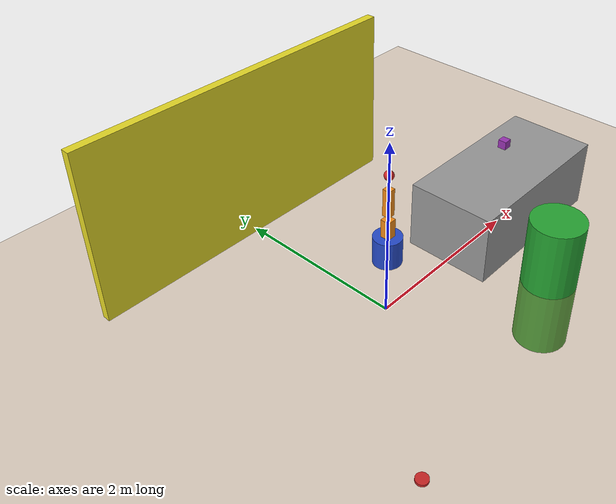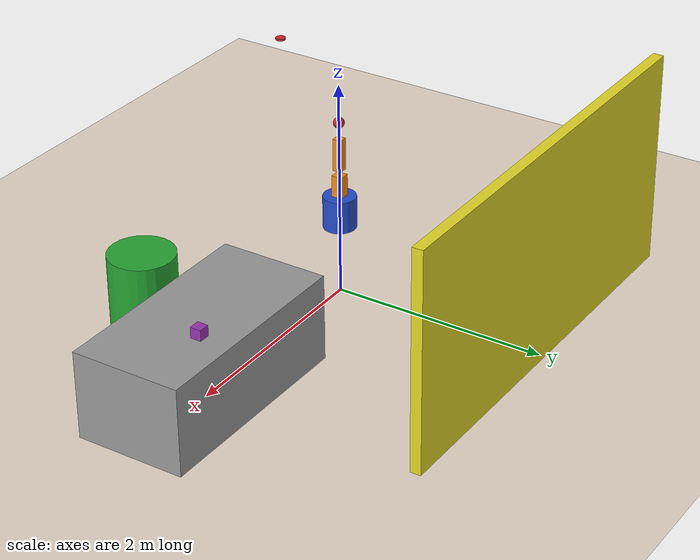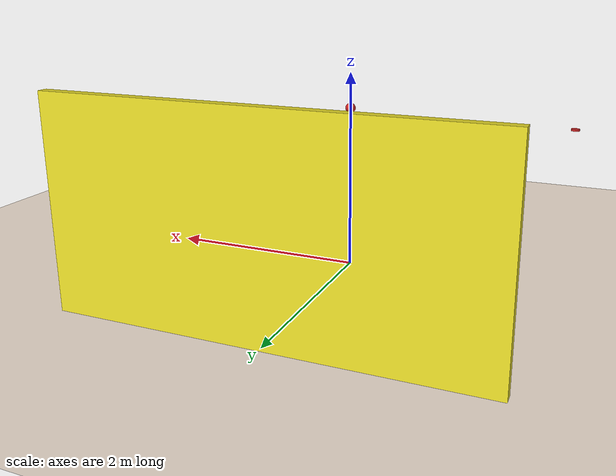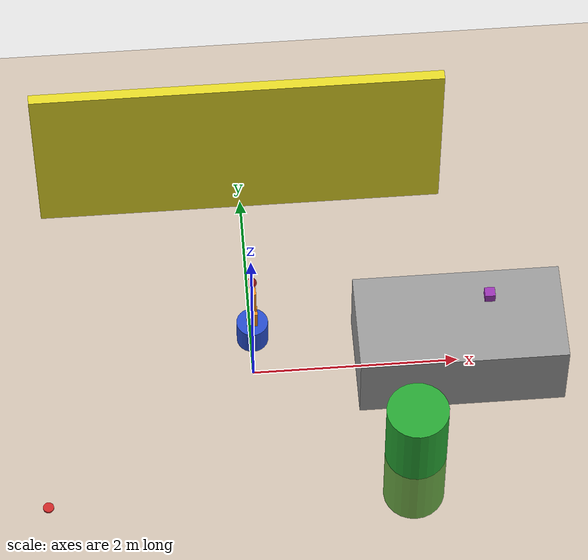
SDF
<?xml version="1.0" ?>
<sdf version="1.7">
  <world name="pulsar_cobot_workspace">

    <!-- Real-time physics for collaborative robotics -->
    <physics name="real_time_physics" type="ode">
      <max_step_size>0.0001</max_step_size> <!-- 100μs for high precision -->
      <real_time_factor>1.0</real_time_factor>
      <real_time_update_rate>10000</real_time_update_rate> <!-- 10kHz -->
      <ode>
        <solver>
          <type>quick</type>
          <iters>100</iters>
          <precon_iters>0</precon_iters>
          <sor>1.3</sor>
          <use_dynamic_moi_rescaling>true</use_dynamic_moi_rescaling>
        </solver>
        <constraints>
          <cfm>0.0</cfm>
          <erp>0.8</erp>
          <contact_max_correcting_vel>10.0</contact_max_correcting_vel>
          <contact_surface_layer>0.001</contact_surface_layer>
        </constraints>
      </ode>
    </physics>

    <!-- Lighting setup -->
    <include>
      <uri>model://sun</uri>
    </include>

    <!-- Workshop floor -->
    <model name="workshop_floor">
      <static>true</static>
      <link name="floor">
        <collision name="floor_collision">
          <geometry>
            <plane>
              <normal>0 0 1</normal>
              <size>10 10</size>
            </plane>
          </geometry>
        </collision>
        <visual name="floor_visual">
          <geometry>
            <plane>
              <normal>0 0 1</normal>
              <size>10 10</size>
            </plane>
          </geometry>
          <material>
            <script>
              <uri>file://media/materials/scripts/gazebo.material</uri>
              <name>Gazebo/Wood</name>
            </script>
          </material>
        </visual>
      </link>
    </model>

    <!-- Work table -->
    <model name="work_table">
      <static>true</static>
      <pose>2 0 0.4 0 0 0</pose>
      <link name="table_top">
        <collision name="table_collision">
          <geometry>
            <box>
              <size>2 1 0.8</size>
            </box>
          </geometry>
        </collision>
        <visual name="table_visual">
          <geometry>
            <box>
              <size>2 1 0.8</size>
            </box>
          </geometry>
          <material>
            <script>
              <uri>file://media/materials/scripts/gazebo.material</uri>
              <name>Gazebo/Grey</name>
            </script>
          </material>
        </visual>
      </link>
    </model>

    <!-- Safety barrier -->
    <model name="safety_barrier">
      <static>true</static>
      <pose>0 2 1 0 0 0</pose>
      <link name="barrier">
        <collision name="barrier_collision">
          <geometry>
            <box>
              <size>4 0.1 2</size>
            </box>
          </geometry>
        </collision>
        <visual name="barrier_visual">
          <geometry>
            <box>
              <size>4 0.1 2</size>
            </box>
          </geometry>
          <material>
            <script>
              <uri>file://media/materials/scripts/gazebo.material</uri>
              <name>Gazebo/Yellow</name>
            </script>
          </material>
        </visual>
      </link>
    </model>

    <!-- Collaborative robot arm (simplified 6-DOF) -->
    <model name="pulsar_cobot">
      <pose>0 0 0.8 0 0 0</pose>

      <!-- Base link -->
      <link name="base_link">
        <inertial>
          <mass>5.0</mass>
          <inertia>
            <ixx>0.1</ixx>
            <iyy>0.1</iyy>
            <izz>0.1</izz>
            <ixy>0</ixy>
            <ixz>0</ixz>
            <iyz>0</iyz>
          </inertia>
        </inertial>
        <collision name="base_collision">
          <geometry>
            <cylinder>
              <radius>0.15</radius>
              <length>0.3</length>
            </cylinder>
          </geometry>
        </collision>
        <visual name="base_visual">
          <geometry>
            <cylinder>
              <radius>0.15</radius>
              <length>0.3</length>
            </cylinder>
          </geometry>
          <material>
            <script>
              <uri>file://media/materials/scripts/gazebo.material</uri>
              <name>Gazebo/Blue</name>
            </script>
          </material>
        </visual>
      </link>

      <!-- Link 1 (Shoulder) -->
      <link name="link1">
        <pose>0 0 0.15 0 0 0</pose>
        <inertial>
          <mass>3.0</mass>
          <inertia>
            <ixx>0.05</ixx>
            <iyy>0.05</iyy>
            <izz>0.02</izz>
            <ixy>0</ixy>
            <ixz>0</ixz>
            <iyz>0</iyz>
          </inertia>
        </inertial>
        <collision name="link1_collision">
          <geometry>
            <box>
              <size>0.1 0.1 0.4</size>
            </box>
          </geometry>
        </collision>
        <visual name="link1_visual">
          <geometry>
            <box>
              <size>0.1 0.1 0.4</size>
            </box>
          </geometry>
          <material>
            <script>
              <uri>file://media/materials/scripts/gazebo.material</uri>
              <name>Gazebo/Orange</name>
            </script>
          </material>
        </visual>
      </link>

      <!-- Link 2 (Upper arm) -->
      <link name="link2">
        <pose>0 0 0.55 0 0 0</pose>
        <inertial>
          <mass>2.5</mass>
          <inertia>
            <ixx>0.04</ixx>
            <iyy>0.04</iyy>
            <izz>0.01</izz>
            <ixy>0</ixy>
            <ixz>0</ixz>
            <iyz>0</iyz>
          </inertia>
        </inertial>
        <collision name="link2_collision">
          <geometry>
            <box>
              <size>0.08 0.08 0.3</size>
            </box>
          </geometry>
        </collision>
        <visual name="link2_visual">
          <geometry>
            <box>
              <size>0.08 0.08 0.3</size>
            </box>
          </geometry>
          <material>
            <script>
              <uri>file://media/materials/scripts/gazebo.material</uri>
              <name>Gazebo/Orange</name>
            </script>
          </material>
        </visual>
      </link>

      <!-- End effector -->
      <link name="end_effector">
        <pose>0 0 0.85 0 0 0</pose>
        <inertial>
          <mass>0.5</mass>
          <inertia>
            <ixx>0.01</ixx>
            <iyy>0.01</iyy>
            <izz>0.01</izz>
            <ixy>0</ixy>
            <ixz>0</ixz>
            <iyz>0</iyz>
          </inertia>
        </inertial>
        <collision name="ee_collision">
          <geometry>
            <sphere>
              <radius>0.05</radius>
            </sphere>
          </geometry>
        </collision>
        <visual name="ee_visual">
          <geometry>
            <sphere>
              <radius>0.05</radius>
            </sphere>
          </geometry>
          <material>
            <script>
              <uri>file://media/materials/scripts/gazebo.material</uri>
              <name>Gazebo/Red</name>
            </script>
          </material>
        </visual>

        <!-- Force/torque sensor -->
        <sensor name="force_torque_sensor" type="force_torque">
          <always_on>true</always_on>
          <update_rate>1000</update_rate>
          <force_torque>
            <frame>sensor</frame>
            <measure_direction>child_to_parent</measure_direction>
          </force_torque>
          <plugin name="gazebo_ros_force" filename="libgazebo_ros_force.so">
            <topicName>/ft_sensor</topicName>
            <bodyName>end_effector</bodyName>
            <updateRate>1000.0</updateRate>
          </plugin>
        </sensor>
      </link>

      <!-- Safety proximity sensors -->
      <link name="proximity_sensor_1">
        <pose>0.2 0 0.4 0 0 0</pose>
        <inertial>
          <mass>0.01</mass>
          <inertia>
            <ixx>0.001</ixx>
            <iyy>0.001</iyy>
            <izz>0.001</izz>
            <ixy>0</ixy>
            <ixz>0</ixz>
            <iyz>0</iyz>
          </inertia>
        </inertial>

        <sensor name="proximity" type="ray">
          <pose>0 0 0 0 0 0</pose>
          <visualize>true</visualize>
          <update_rate>50</update_rate>
          <ray>
            <scan>
              <horizontal>
                <samples>5</samples>
                <resolution>1</resolution>
                <min_angle>-0.5</min_angle>
                <max_angle>0.5</max_angle>
              </horizontal>
            </scan>
            <range>
              <min>0.02</min>
              <max>2.0</max>
              <resolution>0.01</resolution>
            </range>
          </ray>
          <plugin name="gazebo_ros_laser" filename="libgazebo_ros_laser.so">
            <topicName>/proximity_1</topicName>
            <frameName>proximity_sensor_1</frameName>
          </plugin>
        </sensor>
      </link>

      <!-- Joints -->
      <joint name="joint1" type="revolute">
        <parent>base_link</parent>
        <child>link1</child>
        <axis>
          <xyz>0 0 1</xyz>
          <limit>
            <lower>-3.14</lower>
            <upper>3.14</upper>
            <effort>100</effort>
            <velocity>2.0</velocity>
          </limit>
          <dynamics>
            <damping>0.1</damping>
            <friction>0.1</friction>
          </dynamics>
        </axis>
      </joint>

      <joint name="joint2" type="revolute">
        <parent>link1</parent>
        <child>link2</child>
        <axis>
          <xyz>1 0 0</xyz>
          <limit>
            <lower>-1.57</lower>
            <upper>1.57</upper>
            <effort>80</effort>
            <velocity>2.0</velocity>
          </limit>
          <dynamics>
            <damping>0.1</damping>
            <friction>0.1</friction>
          </dynamics>
        </axis>
      </joint>

      <joint name="joint3" type="revolute">
        <parent>link2</parent>
        <child>end_effector</child>
        <axis>
          <xyz>1 0 0</xyz>
          <limit>
            <lower>-3.14</lower>
            <upper>3.14</upper>
            <effort>50</effort>
            <velocity>3.0</velocity>
          </limit>
          <dynamics>
            <damping>0.05</damping>
            <friction>0.05</friction>
          </dynamics>
        </axis>
      </joint>

      <joint name="proximity_joint_1" type="fixed">
        <parent>link1</parent>
        <child>proximity_sensor_1</child>
      </joint>

      <!-- Real-time joint position control -->
      <plugin name="gazebo_ros_control" filename="libgazebo_ros_control.so">
        <robotNamespace>/pulsar_cobot</robotNamespace>
        <controlPeriod>0.001</controlPeriod> <!-- 1kHz control rate -->
      </plugin>
    </model>

    <!-- Human operator (simplified) -->
    <model name="human_operator">
      <pose>1.5 -1 0 0 0 1.57</pose>
      <static>false</static>

      <link name="torso">
        <inertial>
          <mass>60.0</mass>
          <inertia>
            <ixx>5.0</ixx>
            <iyy>5.0</iyy>
            <izz>2.0</izz>
            <ixy>0</ixy>
            <ixz>0</ixz>
            <iyz>0</iyz>
          </inertia>
        </inertial>
        <collision name="torso_collision">
          <geometry>
            <cylinder>
              <radius>0.3</radius>
              <length>1.6</length>
            </cylinder>
          </geometry>
        </collision>
        <visual name="torso_visual">
          <geometry>
            <cylinder>
              <radius>0.3</radius>
              <length>1.6</length>
            </cylinder>
          </geometry>
          <material>
            <script>
              <uri>file://media/materials/scripts/gazebo.material</uri>
              <name>Gazebo/Green</name>
            </script>
          </material>
        </visual>

        <!-- Human detection sensor -->
        <sensor name="human_detector" type="contact">
          <always_on>true</always_on>
          <update_rate>1000</update_rate>
          <contact>
            <collision>torso_collision</collision>
          </contact>
          <plugin name="gazebo_ros_bumper" filename="libgazebo_ros_bumper.so">
            <bumperTopicName>/human_contact</bumperTopicName>
            <frameName>torso</frameName>
          </plugin>
        </sensor>
      </link>
    </model>

    <!-- Work objects -->
    <model name="workpiece_1">
      <pose>2.3 0.2 0.85 0 0 0</pose>
      <link name="piece">
        <inertial>
          <mass>0.5</mass>
          <inertia>
            <ixx>0.01</ixx>
            <iyy>0.01</iyy>
            <izz>0.01</izz>
            <ixy>0</ixy>
            <ixz>0</ixz>
            <iyz>0</iyz>
          </inertia>
        </inertial>
        <collision name="piece_collision">
          <geometry>
            <box>
              <size>0.1 0.1 0.1</size>
            </box>
          </geometry>
        </collision>
        <visual name="piece_visual">
          <geometry>
            <box>
              <size>0.1 0.1 0.1</size>
            </box>
          </geometry>
          <material>
            <script>
              <uri>file://media/materials/scripts/gazebo.material</uri>
              <name>Gazebo/Purple</name>
            </script>
          </material>
        </visual>
      </link>
    </model>

    <!-- Emergency stop button -->
    <model name="emergency_stop">
      <pose>-2 -2 1.2 0 0 0</pose>
      <static>true</static>
      <link name="button">
        <collision name="button_collision">
          <geometry>
            <cylinder>
              <radius>0.05</radius>
              <length>0.02</length>
            </cylinder>
          </geometry>
        </collision>
        <visual name="button_visual">
          <geometry>
            <cylinder>
              <radius>0.05</radius>
              <length>0.02</length>
            </cylinder>
          </geometry>
          <material>
            <script>
              <uri>file://media/materials/scripts/gazebo.material</uri>
              <name>Gazebo/Red</name>
            </script>
          </material>
        </visual>

        <sensor name="emergency_sensor" type="contact">
          <always_on>true</always_on>
          <update_rate>1000</update_rate>
          <contact>
            <collision>button_collision</collision>
          </contact>
          <plugin name="gazebo_ros_bumper" filename="libgazebo_ros_bumper.so">
            <bumperTopicName>/emergency_stop</bumperTopicName>
            <frameName>button</frameName>
          </plugin>
        </sensor>
      </link>
    </model>

    <!-- Camera for workspace monitoring -->
    <model name="overhead_camera">
      <pose>0 0 3 0 1.57 0</pose>
      <static>true</static>
      <link name="camera_link">
        <sensor name="camera" type="camera">
          <camera>
            <horizontal_fov>1.0472</horizontal_fov>
            <image>
              <width>1920</width>
              <height>1080</height>
              <format>R8G8B8</format>
            </image>
            <clip>
              <near>0.1</near>
              <far>100</far>
            </clip>
            <noise>
              <type>gaussian</type>
              <mean>0.0</mean>
              <stddev>0.001</stddev>
            </noise>
          </camera>
          <plugin name="camera_controller" filename="libgazebo_ros_camera.so">
            <alwaysOn>true</alwaysOn>
            <updateRate>30.0</updateRate>
            <cameraName>/workspace_camera</cameraName>
            <imageTopicName>image_raw</imageTopicName>
            <cameraInfoTopicName>camera_info</cameraInfoTopicName>
            <frameName>camera_link</frameName>
            <hackBaseline>0.07</hackBaseline>
            <distortionK1>0.0</distortionK1>
            <distortionK2>0.0</distortionK2>
            <distortionK3>0.0</distortionK3>
            <distortionT1>0.0</distortionT1>
            <distortionT2>0.0</distortionT2>
          </plugin>
        </sensor>
      </link>
    </model>

    <!-- Real-time GUI configuration -->
    <gui fullscreen='0'>
      <camera name='user_camera'>
        <pose>3.0 -3.0 2.0 0.0 0.3 2.4</pose>
        <view_controller>orbit</view_controller>
      </camera>
    </gui>

  </world>
</sdf>
